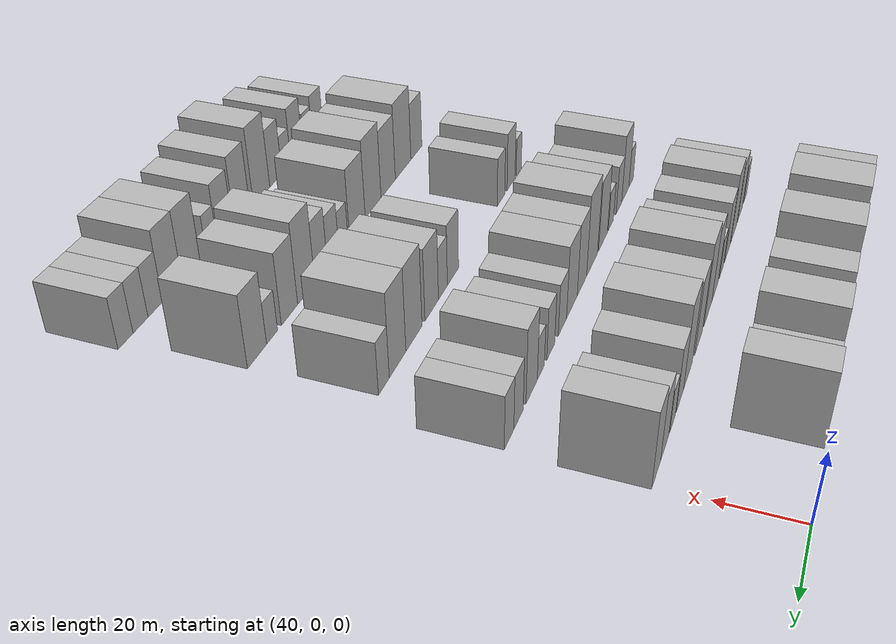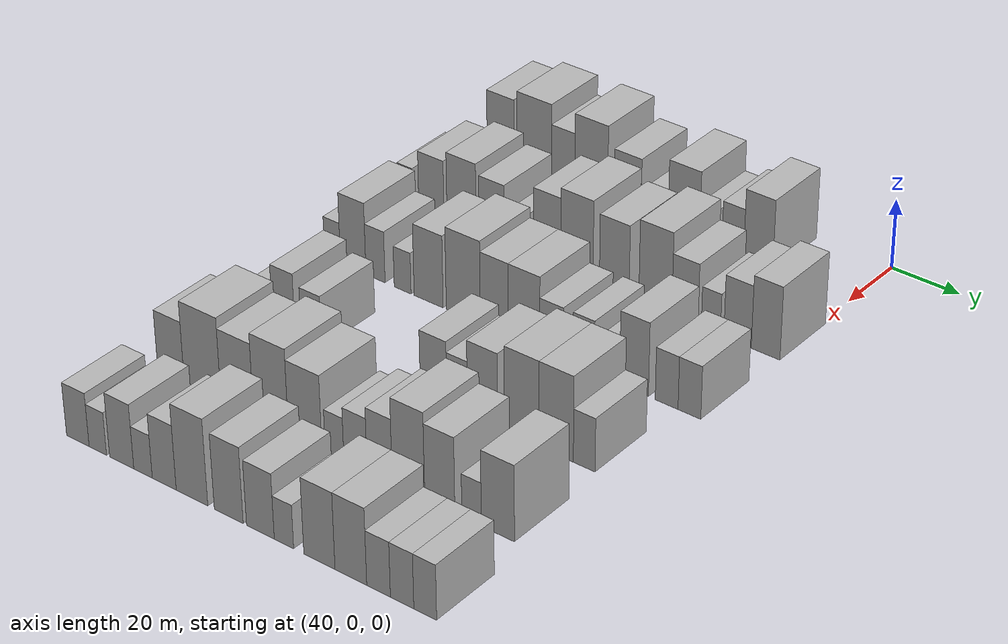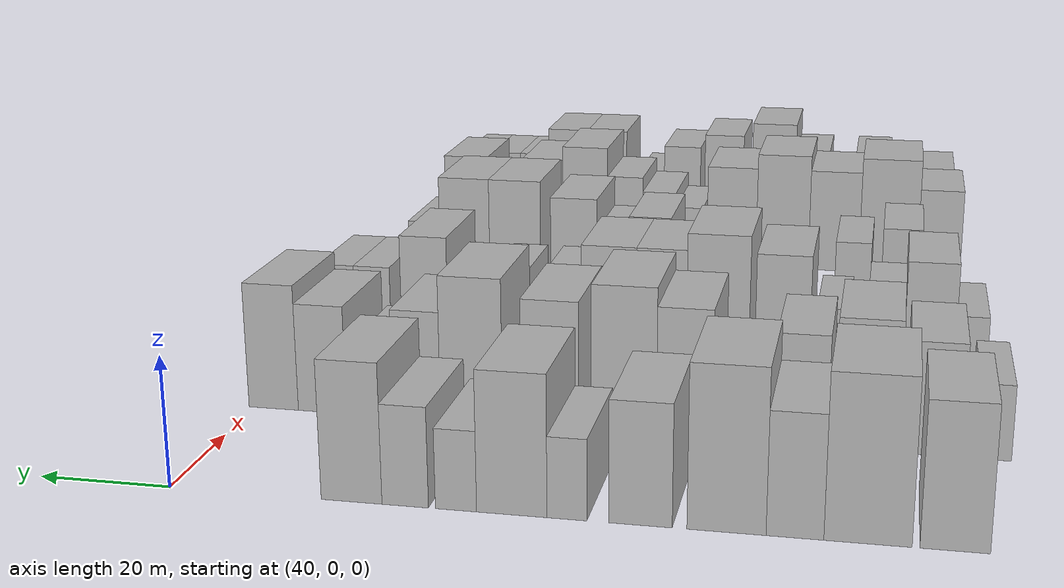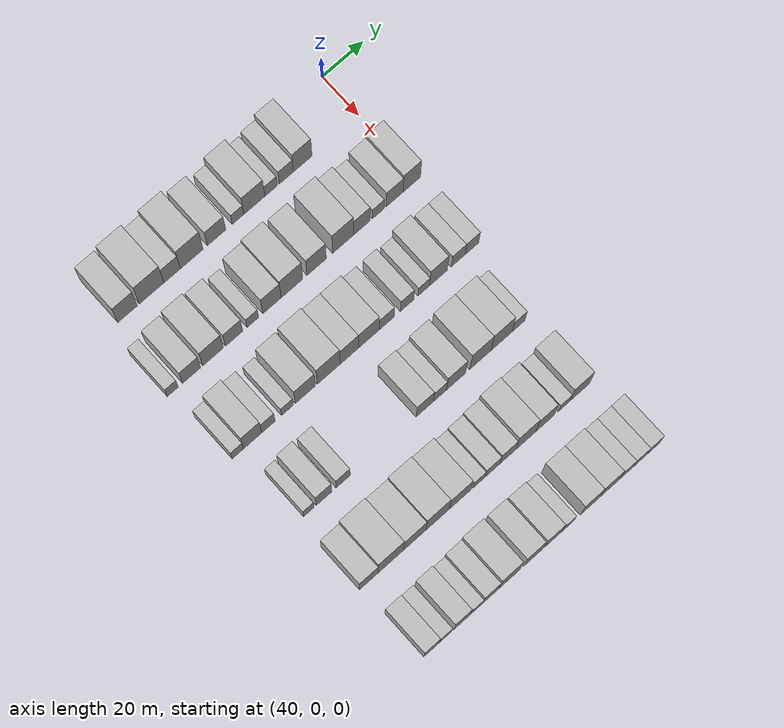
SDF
<sdf version="1.6">
 <world name="default">
  <model name="building_48">
   <static>1</static>
   <pose>50.0000 -110.4091 0 0.000000 0.000000 0.000000</pose>
   <link name="link">
    <pose>0 0 10.50 0 0 0</pose>
    <collision name="collision"><geometry><box><size>20.0000 9.1228 21.0000</size></box></geometry></collision>
    <visual name="visual">
     <cast_shadows>0</cast_shadows>
     <geometry><box><size>20.0000 9.1228 21.0000</size></box></geometry>
     <material>
      <script>
       <uri>model://HANNAS_wall/materials/scripts</uri>
       <uri>model://HANNAS_wall/materials/textures</uri>
       <name>vrc/HANNAS_wall</name>
      </script>
     </material>
    </visual>
   </link>
  </model>
  <model name="building_49">
   <static>1</static>
   <pose>50.0000 -99.0470 0 0.000000 0.000000 0.000000</pose>
   <link name="link">
    <pose>0 0 12.00 0 0 0</pose>
    <collision name="collision"><geometry><box><size>20.0000 11.6015 24.0000</size></box></geometry></collision>
    <visual name="visual">
     <cast_shadows>0</cast_shadows>
     <geometry><box><size>20.0000 11.6015 24.0000</size></box></geometry>
     <material>
      <script>
       <uri>model://HANNAS_wall/materials/scripts</uri>
       <uri>model://HANNAS_wall/materials/textures</uri>
       <name>vrc/HANNAS_wall</name>
      </script>
     </material>
    </visual>
   </link>
  </model>
  <model name="building_50">
   <static>1</static>
   <pose>50.0000 -89.3929 0 0.000000 0.000000 0.000000</pose>
   <link name="link">
    <pose>0 0 9.00 0 0 0</pose>
    <collision name="collision"><geometry><box><size>20.0000 7.7065 18.0000</size></box></geometry></collision>
    <visual name="visual">
     <cast_shadows>0</cast_shadows>
     <geometry><box><size>20.0000 7.7065 18.0000</size></box></geometry>
     <material>
      <script>
       <uri>model://HANNAS_wall/materials/scripts</uri>
       <uri>model://HANNAS_wall/materials/textures</uri>
       <name>vrc/HANNAS_wall</name>
      </script>
     </material>
    </visual>
   </link>
  </model>
  <model name="building_51">
   <static>1</static>
   <pose>50.0000 -80.1784 0 0.000000 0.000000 0.000000</pose>
   <link name="link">
    <pose>0 0 12.00 0 0 0</pose>
    <collision name="collision"><geometry><box><size>20.0000 10.7226 24.0000</size></box></geometry></collision>
    <visual name="visual">
     <cast_shadows>0</cast_shadows>
     <geometry><box><size>20.0000 10.7226 24.0000</size></box></geometry>
     <material>
      <script>
       <uri>model://HANNAS_wall/materials/scripts</uri>
       <uri>model://HANNAS_wall/materials/textures</uri>
       <name>vrc/HANNAS_wall</name>
      </script>
     </material>
    </visual>
   </link>
  </model>
  <model name="building_52">
   <static>1</static>
   <pose>50.0000 -68.4201 0 0.000000 0.000000 0.000000</pose>
   <link name="link">
    <pose>0 0 9.00 0 0 0</pose>
    <collision name="collision"><geometry><box><size>20.0000 8.7939 18.0000</size></box></geometry></collision>
    <visual name="visual">
     <cast_shadows>0</cast_shadows>
     <geometry><box><size>20.0000 8.7939 18.0000</size></box></geometry>
     <material>
      <script>
       <uri>model://HANNAS_wall/materials/scripts</uri>
       <uri>model://HANNAS_wall/materials/textures</uri>
       <name>vrc/HANNAS_wall</name>
      </script>
     </material>
    </visual>
   </link>
  </model>
  <model name="building_53">
   <static>1</static>
   <pose>50.0000 -58.2242 0 0.000000 0.000000 0.000000</pose>
   <link name="link">
    <pose>0 0 6.00 0 0 0</pose>
    <collision name="collision"><geometry><box><size>20.0000 5.5979 12.0000</size></box></geometry></collision>
    <visual name="visual">
     <cast_shadows>0</cast_shadows>
     <geometry><box><size>20.0000 5.5979 12.0000</size></box></geometry>
     <material>
      <script>
       <uri>model://HANNAS_wall/materials/scripts</uri>
       <uri>model://HANNAS_wall/materials/textures</uri>
       <name>vrc/HANNAS_wall</name>
      </script>
     </material>
    </visual>
   </link>
  </model>
  <model name="building_54">
   <static>1</static>
   <pose>50.0000 -50.4247 0 0.000000 0.000000 0.000000</pose>
   <link name="link">
    <pose>0 0 10.50 0 0 0</pose>
    <collision name="collision"><geometry><box><size>20.0000 10.0012 21.0000</size></box></geometry></collision>
    <visual name="visual">
     <cast_shadows>0</cast_shadows>
     <geometry><box><size>20.0000 10.0012 21.0000</size></box></geometry>
     <material>
      <script>
       <uri>model://HANNAS_wall/materials/scripts</uri>
       <uri>model://HANNAS_wall/materials/textures</uri>
       <name>vrc/HANNAS_wall</name>
      </script>
     </material>
    </visual>
   </link>
  </model>
  <model name="building_55">
   <static>1</static>
   <pose>50.0000 -42.4636 0 0.000000 0.000000 0.000000</pose>
   <link name="link">
    <pose>0 0 6.00 0 0 0</pose>
    <collision name="collision"><geometry><box><size>20.0000 5.9210 12.0000</size></box></geometry></collision>
    <visual name="visual">
     <cast_shadows>0</cast_shadows>
     <geometry><box><size>20.0000 5.9210 12.0000</size></box></geometry>
     <material>
      <script>
       <uri>model://HANNAS_wall/materials/scripts</uri>
       <uri>model://HANNAS_wall/materials/textures</uri>
       <name>vrc/HANNAS_wall</name>
      </script>
     </material>
    </visual>
   </link>
  </model>
  <model name="building_56">
   <static>1</static>
   <pose>50.0000 -35.1242 0 0.000000 0.000000 0.000000</pose>
   <link name="link">
    <pose>0 0 7.50 0 0 0</pose>
    <collision name="collision"><geometry><box><size>20.0000 6.7579 15.0000</size></box></geometry></collision>
    <visual name="visual">
     <cast_shadows>0</cast_shadows>
     <geometry><box><size>20.0000 6.7579 15.0000</size></box></geometry>
     <material>
      <script>
       <uri>model://HANNAS_wall/materials/scripts</uri>
       <uri>model://HANNAS_wall/materials/textures</uri>
       <name>vrc/HANNAS_wall</name>
      </script>
     </material>
    </visual>
   </link>
  </model>
  <model name="building_57">
   <static>1</static>
   <pose>50.0000 -27.2709 0 0.000000 0.000000 0.000000</pose>
   <link name="link">
    <pose>0 0 10.50 0 0 0</pose>
    <collision name="collision"><geometry><box><size>20.0000 8.9488 21.0000</size></box></geometry></collision>
    <visual name="visual">
     <cast_shadows>0</cast_shadows>
     <geometry><box><size>20.0000 8.9488 21.0000</size></box></geometry>
     <material>
      <script>
       <uri>model://HANNAS_wall/materials/scripts</uri>
       <uri>model://HANNAS_wall/materials/textures</uri>
       <name>vrc/HANNAS_wall</name>
      </script>
     </material>
    </visual>
   </link>
  </model>
  <model name="building_166">
   <static>1</static>
   <pose>82.0000 -116.8575 0 0.000000 0.000000 0.000000</pose>
   <link name="link">
    <pose>0 0 6.00 0 0 0</pose>
    <collision name="collision"><geometry><box><size>20.0000 5.1155 12.0000</size></box></geometry></collision>
    <visual name="visual">
     <cast_shadows>0</cast_shadows>
     <geometry><box><size>20.0000 5.1155 12.0000</size></box></geometry>
     <material>
      <script>
       <uri>model://HANNAS_wall/materials/scripts</uri>
       <uri>model://HANNAS_wall/materials/textures</uri>
       <name>vrc/HANNAS_wall</name>
      </script>
     </material>
    </visual>
   </link>
  </model>
  <model name="building_167">
   <static>1</static>
   <pose>82.0000 -108.0690 0 0.000000 0.000000 0.000000</pose>
   <link name="link">
    <pose>0 0 9.00 0 0 0</pose>
    <collision name="collision"><geometry><box><size>20.0000 8.4614 18.0000</size></box></geometry></collision>
    <visual name="visual">
     <cast_shadows>0</cast_shadows>
     <geometry><box><size>20.0000 8.4614 18.0000</size></box></geometry>
     <material>
      <script>
       <uri>model://HANNAS_wall/materials/scripts</uri>
       <uri>model://HANNAS_wall/materials/textures</uri>
       <name>vrc/HANNAS_wall</name>
      </script>
     </material>
    </visual>
   </link>
  </model>
  <model name="building_168">
   <static>1</static>
   <pose>82.0000 -98.0015 0 0.000000 0.000000 0.000000</pose>
   <link name="link">
    <pose>0 0 10.50 0 0 0</pose>
    <collision name="collision"><geometry><box><size>20.0000 9.6736 21.0000</size></box></geometry></collision>
    <visual name="visual">
     <cast_shadows>0</cast_shadows>
     <geometry><box><size>20.0000 9.6736 21.0000</size></box></geometry>
     <material>
      <script>
       <uri>model://HANNAS_wall/materials/scripts</uri>
       <uri>model://HANNAS_wall/materials/textures</uri>
       <name>vrc/HANNAS_wall</name>
      </script>
     </material>
    </visual>
   </link>
  </model>
  <model name="building_169">
   <static>1</static>
   <pose>82.0000 -88.0853 0 0.000000 0.000000 0.000000</pose>
   <link name="link">
    <pose>0 0 9.00 0 0 0</pose>
    <collision name="collision"><geometry><box><size>20.0000 8.1589 18.0000</size></box></geometry></collision>
    <visual name="visual">
     <cast_shadows>0</cast_shadows>
     <geometry><box><size>20.0000 8.1589 18.0000</size></box></geometry>
     <material>
      <script>
       <uri>model://HANNAS_wall/materials/scripts</uri>
       <uri>model://HANNAS_wall/materials/textures</uri>
       <name>vrc/HANNAS_wall</name>
      </script>
     </material>
    </visual>
   </link>
  </model>
  <model name="building_170">
   <static>1</static>
   <pose>82.0000 -79.2702 0 0.000000 0.000000 0.000000</pose>
   <link name="link">
    <pose>0 0 6.00 0 0 0</pose>
    <collision name="collision"><geometry><box><size>20.0000 5.4712 12.0000</size></box></geometry></collision>
    <visual name="visual">
     <cast_shadows>0</cast_shadows>
     <geometry><box><size>20.0000 5.4712 12.0000</size></box></geometry>
     <material>
      <script>
       <uri>model://HANNAS_wall/materials/scripts</uri>
       <uri>model://HANNAS_wall/materials/textures</uri>
       <name>vrc/HANNAS_wall</name>
      </script>
     </material>
    </visual>
   </link>
  </model>
  <model name="building_171">
   <static>1</static>
   <pose>82.0000 -70.1874 0 0.000000 0.000000 0.000000</pose>
   <link name="link">
    <pose>0 0 10.50 0 0 0</pose>
    <collision name="collision"><geometry><box><size>20.0000 8.6943 21.0000</size></box></geometry></collision>
    <visual name="visual">
     <cast_shadows>0</cast_shadows>
     <geometry><box><size>20.0000 8.6943 21.0000</size></box></geometry>
     <material>
      <script>
       <uri>model://HANNAS_wall/materials/scripts</uri>
       <uri>model://HANNAS_wall/materials/textures</uri>
       <name>vrc/HANNAS_wall</name>
      </script>
     </material>
    </visual>
   </link>
  </model>
  <model name="building_172">
   <static>1</static>
   <pose>82.0000 -60.7130 0 0.000000 0.000000 0.000000</pose>
   <link name="link">
    <pose>0 0 12.00 0 0 0</pose>
    <collision name="collision"><geometry><box><size>20.0000 10.2545 24.0000</size></box></geometry></collision>
    <visual name="visual">
     <cast_shadows>0</cast_shadows>
     <geometry><box><size>20.0000 10.2545 24.0000</size></box></geometry>
     <material>
      <script>
       <uri>model://HANNAS_wall/materials/scripts</uri>
       <uri>model://HANNAS_wall/materials/textures</uri>
       <name>vrc/HANNAS_wall</name>
      </script>
     </material>
    </visual>
   </link>
  </model>
  <model name="building_173">
   <static>1</static>
   <pose>82.0000 -48.9706 0 0.000000 0.000000 0.000000</pose>
   <link name="link">
    <pose>0 0 10.50 0 0 0</pose>
    <collision name="collision"><geometry><box><size>20.0000 9.2304 21.0000</size></box></geometry></collision>
    <visual name="visual">
     <cast_shadows>0</cast_shadows>
     <geometry><box><size>20.0000 9.2304 21.0000</size></box></geometry>
     <material>
      <script>
       <uri>model://HANNAS_wall/materials/scripts</uri>
       <uri>model://HANNAS_wall/materials/textures</uri>
       <name>vrc/HANNAS_wall</name>
      </script>
     </material>
    </visual>
   </link>
  </model>
  <model name="building_174">
   <static>1</static>
   <pose>82.0000 -36.3029 0 0.000000 0.000000 0.000000</pose>
   <link name="link">
    <pose>0 0 12.00 0 0 0</pose>
    <collision name="collision"><geometry><box><size>20.0000 10.1050 24.0000</size></box></geometry></collision>
    <visual name="visual">
     <cast_shadows>0</cast_shadows>
     <geometry><box><size>20.0000 10.1050 24.0000</size></box></geometry>
     <material>
      <script>
       <uri>model://HANNAS_wall/materials/scripts</uri>
       <uri>model://HANNAS_wall/materials/textures</uri>
       <name>vrc/HANNAS_wall</name>
      </script>
     </material>
    </visual>
   </link>
  </model>
  <model name="building_175">
   <static>1</static>
   <pose>82.0000 -27.2912 0 0.000000 0.000000 0.000000</pose>
   <link name="link">
    <pose>0 0 9.00 0 0 0</pose>
    <collision name="collision"><geometry><box><size>20.0000 7.9183 18.0000</size></box></geometry></collision>
    <visual name="visual">
     <cast_shadows>0</cast_shadows>
     <geometry><box><size>20.0000 7.9183 18.0000</size></box></geometry>
     <material>
      <script>
       <uri>model://HANNAS_wall/materials/scripts</uri>
       <uri>model://HANNAS_wall/materials/textures</uri>
       <name>vrc/HANNAS_wall</name>
      </script>
     </material>
    </visual>
   </link>
  </model>
  <model name="building_176">
   <static>1</static>
   <pose>82.0000 -19.4610 0 0.000000 0.000000 0.000000</pose>
   <link name="link">
    <pose>0 0 6.00 0 0 0</pose>
    <collision name="collision"><geometry><box><size>20.0000 5.7423 12.0000</size></box></geometry></collision>
    <visual name="visual">
     <cast_shadows>0</cast_shadows>
     <geometry><box><size>20.0000 5.7423 12.0000</size></box></geometry>
     <material>
      <script>
       <uri>model://HANNAS_wall/materials/scripts</uri>
       <uri>model://HANNAS_wall/materials/textures</uri>
       <name>vrc/HANNAS_wall</name>
      </script>
     </material>
    </visual>
   </link>
  </model>
  <model name="building_177">
   <static>1</static>
   <pose>82.0000 -11.5265 0 0.000000 0.000000 0.000000</pose>
   <link name="link">
    <pose>0 0 9.00 0 0 0</pose>
    <collision name="collision"><geometry><box><size>20.0000 8.1266 18.0000</size></box></geometry></collision>
    <visual name="visual">
     <cast_shadows>0</cast_shadows>
     <geometry><box><size>20.0000 8.1266 18.0000</size></box></geometry>
     <material>
      <script>
       <uri>model://HANNAS_wall/materials/scripts</uri>
       <uri>model://HANNAS_wall/materials/textures</uri>
       <name>vrc/HANNAS_wall</name>
      </script>
     </material>
    </visual>
   </link>
  </model>
  <model name="building_178">
   <static>1</static>
   <pose>82.0000 -3.2553 0 0.000000 0.000000 0.000000</pose>
   <link name="link">
    <pose>0 0 10.50 0 0 0</pose>
    <collision name="collision"><geometry><box><size>20.0000 8.4157 21.0000</size></box></geometry></collision>
    <visual name="visual">
     <cast_shadows>0</cast_shadows>
     <geometry><box><size>20.0000 8.4157 21.0000</size></box></geometry>
     <material>
      <script>
       <uri>model://HANNAS_wall/materials/scripts</uri>
       <uri>model://HANNAS_wall/materials/textures</uri>
       <name>vrc/HANNAS_wall</name>
      </script>
     </material>
    </visual>
   </link>
  </model>
  <model name="building_289">
   <static>1</static>
   <pose>114.0000 -114.3473 0 0.000000 0.000000 0.000000</pose>
   <link name="link">
    <pose>0 0 6.00 0 0 0</pose>
    <collision name="collision"><geometry><box><size>20.0000 5.3311 12.0000</size></box></geometry></collision>
    <visual name="visual">
     <cast_shadows>0</cast_shadows>
     <geometry><box><size>20.0000 5.3311 12.0000</size></box></geometry>
     <material>
      <script>
       <uri>model://HANNAS_wall/materials/scripts</uri>
       <uri>model://HANNAS_wall/materials/textures</uri>
       <name>vrc/HANNAS_wall</name>
      </script>
     </material>
    </visual>
   </link>
  </model>
  <model name="building_290">
   <static>1</static>
   <pose>114.0000 -107.4375 0 0.000000 0.000000 0.000000</pose>
   <link name="link">
    <pose>0 0 10.50 0 0 0</pose>
    <collision name="collision"><geometry><box><size>20.0000 8.4883 21.0000</size></box></geometry></collision>
    <visual name="visual">
     <cast_shadows>0</cast_shadows>
     <geometry><box><size>20.0000 8.4883 21.0000</size></box></geometry>
     <material>
      <script>
       <uri>model://HANNAS_wall/materials/scripts</uri>
       <uri>model://HANNAS_wall/materials/textures</uri>
       <name>vrc/HANNAS_wall</name>
      </script>
     </material>
    </visual>
   </link>
  </model>
  <model name="building_291">
   <static>1</static>
   <pose>114.0000 -100.0469 0 0.000000 0.000000 0.000000</pose>
   <link name="link">
    <pose>0 0 7.50 0 0 0</pose>
    <collision name="collision"><geometry><box><size>20.0000 6.2930 15.0000</size></box></geometry></collision>
    <visual name="visual">
     <cast_shadows>0</cast_shadows>
     <geometry><box><size>20.0000 6.2930 15.0000</size></box></geometry>
     <material>
      <script>
       <uri>model://HANNAS_wall/materials/scripts</uri>
       <uri>model://HANNAS_wall/materials/textures</uri>
       <name>vrc/HANNAS_wall</name>
      </script>
     </material>
    </visual>
   </link>
  </model>
  <model name="building_292">
   <static>1</static>
   <pose>114.0000 -91.1639 0 0.000000 0.000000 0.000000</pose>
   <link name="link">
    <pose>0 0 6.00 0 0 0</pose>
    <collision name="collision"><geometry><box><size>20.0000 5.4729 12.0000</size></box></geometry></collision>
    <visual name="visual">
     <cast_shadows>0</cast_shadows>
     <geometry><box><size>20.0000 5.4729 12.0000</size></box></geometry>
     <material>
      <script>
       <uri>model://HANNAS_wall/materials/scripts</uri>
       <uri>model://HANNAS_wall/materials/textures</uri>
       <name>vrc/HANNAS_wall</name>
      </script>
     </material>
    </visual>
   </link>
  </model>
  <model name="building_293">
   <static>1</static>
   <pose>114.0000 -82.7549 0 0.000000 0.000000 0.000000</pose>
   <link name="link">
    <pose>0 0 10.50 0 0 0</pose>
    <collision name="collision"><geometry><box><size>20.0000 9.3450 21.0000</size></box></geometry></collision>
    <visual name="visual">
     <cast_shadows>0</cast_shadows>
     <geometry><box><size>20.0000 9.3450 21.0000</size></box></geometry>
     <material>
      <script>
       <uri>model://HANNAS_wall/materials/scripts</uri>
       <uri>model://HANNAS_wall/materials/textures</uri>
       <name>vrc/HANNAS_wall</name>
      </script>
     </material>
    </visual>
   </link>
  </model>
  <model name="building_294">
   <static>1</static>
   <pose>114.0000 -71.6707 0 0.000000 0.000000 0.000000</pose>
   <link name="link">
    <pose>0 0 12.00 0 0 0</pose>
    <collision name="collision"><geometry><box><size>20.0000 10.8234 24.0000</size></box></geometry></collision>
    <visual name="visual">
     <cast_shadows>0</cast_shadows>
     <geometry><box><size>20.0000 10.8234 24.0000</size></box></geometry>
     <material>
      <script>
       <uri>model://HANNAS_wall/materials/scripts</uri>
       <uri>model://HANNAS_wall/materials/textures</uri>
       <name>vrc/HANNAS_wall</name>
      </script>
     </material>
    </visual>
   </link>
  </model>
  <model name="building_295">
   <static>1</static>
   <pose>114.0000 -61.8608 0 0.000000 0.000000 0.000000</pose>
   <link name="link">
    <pose>0 0 10.50 0 0 0</pose>
    <collision name="collision"><geometry><box><size>20.0000 8.7965 21.0000</size></box></geometry></collision>
    <visual name="visual">
     <cast_shadows>0</cast_shadows>
     <geometry><box><size>20.0000 8.7965 21.0000</size></box></geometry>
     <material>
      <script>
       <uri>model://HANNAS_wall/materials/scripts</uri>
       <uri>model://HANNAS_wall/materials/textures</uri>
       <name>vrc/HANNAS_wall</name>
      </script>
     </material>
    </visual>
   </link>
  </model>
  <model name="building_296">
   <static>1</static>
   <pose>114.0000 -52.6117 0 0.000000 0.000000 0.000000</pose>
   <link name="link">
    <pose>0 0 10.50 0 0 0</pose>
    <collision name="collision"><geometry><box><size>20.0000 9.7017 21.0000</size></box></geometry></collision>
    <visual name="visual">
     <cast_shadows>0</cast_shadows>
     <geometry><box><size>20.0000 9.7017 21.0000</size></box></geometry>
     <material>
      <script>
       <uri>model://HANNAS_wall/materials/scripts</uri>
       <uri>model://HANNAS_wall/materials/textures</uri>
       <name>vrc/HANNAS_wall</name>
      </script>
     </material>
    </visual>
   </link>
  </model>
  <model name="building_297">
   <static>1</static>
   <pose>114.0000 -44.1905 0 0.000000 0.000000 0.000000</pose>
   <link name="link">
    <pose>0 0 7.50 0 0 0</pose>
    <collision name="collision"><geometry><box><size>20.0000 7.1407 15.0000</size></box></geometry></collision>
    <visual name="visual">
     <cast_shadows>0</cast_shadows>
     <geometry><box><size>20.0000 7.1407 15.0000</size></box></geometry>
     <material>
      <script>
       <uri>model://HANNAS_wall/materials/scripts</uri>
       <uri>model://HANNAS_wall/materials/textures</uri>
       <name>vrc/HANNAS_wall</name>
      </script>
     </material>
    </visual>
   </link>
  </model>
  <model name="building_298">
   <static>1</static>
   <pose>114.0000 -34.4107 0 0.000000 0.000000 0.000000</pose>
   <link name="link">
    <pose>0 0 7.50 0 0 0</pose>
    <collision name="collision"><geometry><box><size>20.0000 6.4190 15.0000</size></box></geometry></collision>
    <visual name="visual">
     <cast_shadows>0</cast_shadows>
     <geometry><box><size>20.0000 6.4190 15.0000</size></box></geometry>
     <material>
      <script>
       <uri>model://HANNAS_wall/materials/scripts</uri>
       <uri>model://HANNAS_wall/materials/textures</uri>
       <name>vrc/HANNAS_wall</name>
      </script>
     </material>
    </visual>
   </link>
  </model>
  <model name="building_299">
   <static>1</static>
   <pose>114.0000 -26.4328 0 0.000000 0.000000 0.000000</pose>
   <link name="link">
    <pose>0 0 6.00 0 0 0</pose>
    <collision name="collision"><geometry><box><size>20.0000 5.5368 12.0000</size></box></geometry></collision>
    <visual name="visual">
     <cast_shadows>0</cast_shadows>
     <geometry><box><size>20.0000 5.5368 12.0000</size></box></geometry>
     <material>
      <script>
       <uri>model://HANNAS_wall/materials/scripts</uri>
       <uri>model://HANNAS_wall/materials/textures</uri>
       <name>vrc/HANNAS_wall</name>
      </script>
     </material>
    </visual>
   </link>
  </model>
  <model name="building_300">
   <static>1</static>
   <pose>114.0000 -19.4034 0 0.000000 0.000000 0.000000</pose>
   <link name="link">
    <pose>0 0 10.50 0 0 0</pose>
    <collision name="collision"><geometry><box><size>20.0000 8.5221 21.0000</size></box></geometry></collision>
    <visual name="visual">
     <cast_shadows>0</cast_shadows>
     <geometry><box><size>20.0000 8.5221 21.0000</size></box></geometry>
     <material>
      <script>
       <uri>model://HANNAS_wall/materials/scripts</uri>
       <uri>model://HANNAS_wall/materials/textures</uri>
       <name>vrc/HANNAS_wall</name>
      </script>
     </material>
    </visual>
   </link>
  </model>
  <model name="building_301">
   <static>1</static>
   <pose>114.0000 -9.8149 0 0.000000 0.000000 0.000000</pose>
   <link name="link">
    <pose>0 0 7.50 0 0 0</pose>
    <collision name="collision"><geometry><box><size>20.0000 6.6549 15.0000</size></box></geometry></collision>
    <visual name="visual">
     <cast_shadows>0</cast_shadows>
     <geometry><box><size>20.0000 6.6549 15.0000</size></box></geometry>
     <material>
      <script>
       <uri>model://HANNAS_wall/materials/scripts</uri>
       <uri>model://HANNAS_wall/materials/textures</uri>
       <name>vrc/HANNAS_wall</name>
      </script>
     </material>
    </visual>
   </link>
  </model>
  <model name="building_302">
   <static>1</static>
   <pose>114.0000 -3.1990 0 0.000000 0.000000 0.000000</pose>
   <link name="link">
    <pose>0 0 7.50 0 0 0</pose>
    <collision name="collision"><geometry><box><size>20.0000 6.5769 15.0000</size></box></geometry></collision>
    <visual name="visual">
     <cast_shadows>0</cast_shadows>
     <geometry><box><size>20.0000 6.5769 15.0000</size></box></geometry>
     <material>
      <script>
       <uri>model://HANNAS_wall/materials/scripts</uri>
       <uri>model://HANNAS_wall/materials/textures</uri>
       <name>vrc/HANNAS_wall</name>
      </script>
     </material>
    </visual>
   </link>
  </model>
  <model name="building_414">
   <static>1</static>
   <pose>146.0000 -109.4839 0 0.000000 0.000000 0.000000</pose>
   <link name="link">
    <pose>0 0 6.00 0 0 0</pose>
    <collision name="collision"><geometry><box><size>20.0000 4.8626 12.0000</size></box></geometry></collision>
    <visual name="visual">
     <cast_shadows>0</cast_shadows>
     <geometry><box><size>20.0000 4.8626 12.0000</size></box></geometry>
     <material>
      <script>
       <uri>model://HANNAS_wall/materials/scripts</uri>
       <uri>model://HANNAS_wall/materials/textures</uri>
       <name>vrc/HANNAS_wall</name>
      </script>
     </material>
    </visual>
   </link>
  </model>
  <model name="building_415">
   <static>1</static>
   <pose>146.0000 -102.4046 0 0.000000 0.000000 0.000000</pose>
   <link name="link">
    <pose>0 0 9.00 0 0 0</pose>
    <collision name="collision"><geometry><box><size>20.0000 7.2959 18.0000</size></box></geometry></collision>
    <visual name="visual">
     <cast_shadows>0</cast_shadows>
     <geometry><box><size>20.0000 7.2959 18.0000</size></box></geometry>
     <material>
      <script>
       <uri>model://HANNAS_wall/materials/scripts</uri>
       <uri>model://HANNAS_wall/materials/textures</uri>
       <name>vrc/HANNAS_wall</name>
      </script>
     </material>
    </visual>
   </link>
  </model>
  <model name="building_416">
   <static>1</static>
   <pose>146.0000 -93.4494 0 0.000000 0.000000 0.000000</pose>
   <link name="link">
    <pose>0 0 7.50 0 0 0</pose>
    <collision name="collision"><geometry><box><size>20.0000 6.6145 15.0000</size></box></geometry></collision>
    <visual name="visual">
     <cast_shadows>0</cast_shadows>
     <geometry><box><size>20.0000 6.6145 15.0000</size></box></geometry>
     <material>
      <script>
       <uri>model://HANNAS_wall/materials/scripts</uri>
       <uri>model://HANNAS_wall/materials/textures</uri>
       <name>vrc/HANNAS_wall</name>
      </script>
     </material>
    </visual>
   </link>
  </model>
  <model name="building_417">
   <static>1</static>
   <pose>146.0000 -54.9550 0 0.000000 0.000000 0.000000</pose>
   <link name="link">
    <pose>0 0 9.00 0 0 0</pose>
    <collision name="collision"><geometry><box><size>20.0000 8.1248 18.0000</size></box></geometry></collision>
    <visual name="visual">
     <cast_shadows>0</cast_shadows>
     <geometry><box><size>20.0000 8.1248 18.0000</size></box></geometry>
     <material>
      <script>
       <uri>model://HANNAS_wall/materials/scripts</uri>
       <uri>model://HANNAS_wall/materials/textures</uri>
       <name>vrc/HANNAS_wall</name>
      </script>
     </material>
    </visual>
   </link>
  </model>
  <model name="building_418">
   <static>1</static>
   <pose>146.0000 -47.7567 0 0.000000 0.000000 0.000000</pose>
   <link name="link">
    <pose>0 0 7.50 0 0 0</pose>
    <collision name="collision"><geometry><box><size>20.0000 6.2717 15.0000</size></box></geometry></collision>
    <visual name="visual">
     <cast_shadows>0</cast_shadows>
     <geometry><box><size>20.0000 6.2717 15.0000</size></box></geometry>
     <material>
      <script>
       <uri>model://HANNAS_wall/materials/scripts</uri>
       <uri>model://HANNAS_wall/materials/textures</uri>
       <name>vrc/HANNAS_wall</name>
      </script>
     </material>
    </visual>
   </link>
  </model>
  <model name="building_419">
   <static>1</static>
   <pose>146.0000 -40.0603 0 0.000000 0.000000 0.000000</pose>
   <link name="link">
    <pose>0 0 10.50 0 0 0</pose>
    <collision name="collision"><geometry><box><size>20.0000 9.1210 21.0000</size></box></geometry></collision>
    <visual name="visual">
     <cast_shadows>0</cast_shadows>
     <geometry><box><size>20.0000 9.1210 21.0000</size></box></geometry>
     <material>
      <script>
       <uri>model://HANNAS_wall/materials/scripts</uri>
       <uri>model://HANNAS_wall/materials/textures</uri>
       <name>vrc/HANNAS_wall</name>
      </script>
     </material>
    </visual>
   </link>
  </model>
  <model name="building_420">
   <static>1</static>
   <pose>146.0000 -28.3979 0 0.000000 0.000000 0.000000</pose>
   <link name="link">
    <pose>0 0 12.00 0 0 0</pose>
    <collision name="collision"><geometry><box><size>20.0000 10.2038 24.0000</size></box></geometry></collision>
    <visual name="visual">
     <cast_shadows>0</cast_shadows>
     <geometry><box><size>20.0000 10.2038 24.0000</size></box></geometry>
     <material>
      <script>
       <uri>model://HANNAS_wall/materials/scripts</uri>
       <uri>model://HANNAS_wall/materials/textures</uri>
       <name>vrc/HANNAS_wall</name>
      </script>
     </material>
    </visual>
   </link>
  </model>
  <model name="building_421">
   <static>1</static>
   <pose>146.0000 -18.2973 0 0.000000 0.000000 0.000000</pose>
   <link name="link">
    <pose>0 0 12.00 0 0 0</pose>
    <collision name="collision"><geometry><box><size>20.0000 9.9975 24.0000</size></box></geometry></collision>
    <visual name="visual">
     <cast_shadows>0</cast_shadows>
     <geometry><box><size>20.0000 9.9975 24.0000</size></box></geometry>
     <material>
      <script>
       <uri>model://HANNAS_wall/materials/scripts</uri>
       <uri>model://HANNAS_wall/materials/textures</uri>
       <name>vrc/HANNAS_wall</name>
      </script>
     </material>
    </visual>
   </link>
  </model>
  <model name="building_422">
   <static>1</static>
   <pose>146.0000 -10.1630 0 0.000000 0.000000 0.000000</pose>
   <link name="link">
    <pose>0 0 7.50 0 0 0</pose>
    <collision name="collision"><geometry><box><size>20.0000 6.2711 15.0000</size></box></geometry></collision>
    <visual name="visual">
     <cast_shadows>0</cast_shadows>
     <geometry><box><size>20.0000 6.2711 15.0000</size></box></geometry>
     <material>
      <script>
       <uri>model://HANNAS_wall/materials/scripts</uri>
       <uri>model://HANNAS_wall/materials/textures</uri>
       <name>vrc/HANNAS_wall</name>
      </script>
     </material>
    </visual>
   </link>
  </model>
  <model name="building_532">
   <static>1</static>
   <pose>178.0000 -110.0928 0 0.000000 0.000000 0.000000</pose>
   <link name="link">
    <pose>0 0 9.00 0 0 0</pose>
    <collision name="collision"><geometry><box><size>20.0000 8.6662 18.0000</size></box></geometry></collision>
    <visual name="visual">
     <cast_shadows>0</cast_shadows>
     <geometry><box><size>20.0000 8.6662 18.0000</size></box></geometry>
     <material>
      <script>
       <uri>model://HANNAS_wall/materials/scripts</uri>
       <uri>model://HANNAS_wall/materials/textures</uri>
       <name>vrc/HANNAS_wall</name>
      </script>
     </material>
    </visual>
   </link>
  </model>
  <model name="building_533">
   <static>1</static>
   <pose>178.0000 -99.8149 0 0.000000 0.000000 0.000000</pose>
   <link name="link">
    <pose>0 0 12.00 0 0 0</pose>
    <collision name="collision"><geometry><box><size>20.0000 11.8897 24.0000</size></box></geometry></collision>
    <visual name="visual">
     <cast_shadows>0</cast_shadows>
     <geometry><box><size>20.0000 11.8897 24.0000</size></box></geometry>
     <material>
      <script>
       <uri>model://HANNAS_wall/materials/scripts</uri>
       <uri>model://HANNAS_wall/materials/textures</uri>
       <name>vrc/HANNAS_wall</name>
      </script>
     </material>
    </visual>
   </link>
  </model>
  <model name="building_534">
   <static>1</static>
   <pose>178.0000 -88.6684 0 0.000000 0.000000 0.000000</pose>
   <link name="link">
    <pose>0 0 10.50 0 0 0</pose>
    <collision name="collision"><geometry><box><size>20.0000 10.4032 21.0000</size></box></geometry></collision>
    <visual name="visual">
     <cast_shadows>0</cast_shadows>
     <geometry><box><size>20.0000 10.4032 21.0000</size></box></geometry>
     <material>
      <script>
       <uri>model://HANNAS_wall/materials/scripts</uri>
       <uri>model://HANNAS_wall/materials/textures</uri>
       <name>vrc/HANNAS_wall</name>
      </script>
     </material>
    </visual>
   </link>
  </model>
  <model name="building_535">
   <static>1</static>
   <pose>178.0000 -78.0075 0 0.000000 0.000000 0.000000</pose>
   <link name="link">
    <pose>0 0 12.00 0 0 0</pose>
    <collision name="collision"><geometry><box><size>20.0000 10.9186 24.0000</size></box></geometry></collision>
    <visual name="visual">
     <cast_shadows>0</cast_shadows>
     <geometry><box><size>20.0000 10.9186 24.0000</size></box></geometry>
     <material>
      <script>
       <uri>model://HANNAS_wall/materials/scripts</uri>
       <uri>model://HANNAS_wall/materials/textures</uri>
       <name>vrc/HANNAS_wall</name>
      </script>
     </material>
    </visual>
   </link>
  </model>
  <model name="building_536">
   <static>1</static>
   <pose>178.0000 -67.3786 0 0.000000 0.000000 0.000000</pose>
   <link name="link">
    <pose>0 0 10.50 0 0 0</pose>
    <collision name="collision"><geometry><box><size>20.0000 10.3391 21.0000</size></box></geometry></collision>
    <visual name="visual">
     <cast_shadows>0</cast_shadows>
     <geometry><box><size>20.0000 10.3391 21.0000</size></box></geometry>
     <material>
      <script>
       <uri>model://HANNAS_wall/materials/scripts</uri>
       <uri>model://HANNAS_wall/materials/textures</uri>
       <name>vrc/HANNAS_wall</name>
      </script>
     </material>
    </visual>
   </link>
  </model>
  <model name="building_537">
   <static>1</static>
   <pose>178.0000 -58.3624 0 0.000000 0.000000 0.000000</pose>
   <link name="link">
    <pose>0 0 6.00 0 0 0</pose>
    <collision name="collision"><geometry><box><size>20.0000 5.6932 12.0000</size></box></geometry></collision>
    <visual name="visual">
     <cast_shadows>0</cast_shadows>
     <geometry><box><size>20.0000 5.6932 12.0000</size></box></geometry>
     <material>
      <script>
       <uri>model://HANNAS_wall/materials/scripts</uri>
       <uri>model://HANNAS_wall/materials/textures</uri>
       <name>vrc/HANNAS_wall</name>
      </script>
     </material>
    </visual>
   </link>
  </model>
  <model name="building_538">
   <static>1</static>
   <pose>178.0000 -51.9931 0 0.000000 0.000000 0.000000</pose>
   <link name="link">
    <pose>0 0 7.50 0 0 0</pose>
    <collision name="collision"><geometry><box><size>20.0000 7.0454 15.0000</size></box></geometry></collision>
    <visual name="visual">
     <cast_shadows>0</cast_shadows>
     <geometry><box><size>20.0000 7.0454 15.0000</size></box></geometry>
     <material>
      <script>
       <uri>model://HANNAS_wall/materials/scripts</uri>
       <uri>model://HANNAS_wall/materials/textures</uri>
       <name>vrc/HANNAS_wall</name>
      </script>
     </material>
    </visual>
   </link>
  </model>
  <model name="building_539">
   <static>1</static>
   <pose>178.0000 -44.7167 0 0.000000 0.000000 0.000000</pose>
   <link name="link">
    <pose>0 0 9.00 0 0 0</pose>
    <collision name="collision"><geometry><box><size>20.0000 7.5075 18.0000</size></box></geometry></collision>
    <visual name="visual">
     <cast_shadows>0</cast_shadows>
     <geometry><box><size>20.0000 7.5075 18.0000</size></box></geometry>
     <material>
      <script>
       <uri>model://HANNAS_wall/materials/scripts</uri>
       <uri>model://HANNAS_wall/materials/textures</uri>
       <name>vrc/HANNAS_wall</name>
      </script>
     </material>
    </visual>
   </link>
  </model>
  <model name="building_540">
   <static>1</static>
   <pose>178.0000 -36.1557 0 0.000000 0.000000 0.000000</pose>
   <link name="link">
    <pose>0 0 12.00 0 0 0</pose>
    <collision name="collision"><geometry><box><size>20.0000 9.6145 24.0000</size></box></geometry></collision>
    <visual name="visual">
     <cast_shadows>0</cast_shadows>
     <geometry><box><size>20.0000 9.6145 24.0000</size></box></geometry>
     <material>
      <script>
       <uri>model://HANNAS_wall/materials/scripts</uri>
       <uri>model://HANNAS_wall/materials/textures</uri>
       <name>vrc/HANNAS_wall</name>
      </script>
     </material>
    </visual>
   </link>
  </model>
  <model name="building_541">
   <static>1</static>
   <pose>178.0000 -26.9537 0 0.000000 0.000000 0.000000</pose>
   <link name="link">
    <pose>0 0 10.50 0 0 0</pose>
    <collision name="collision"><geometry><box><size>20.0000 8.7896 21.0000</size></box></geometry></collision>
    <visual name="visual">
     <cast_shadows>0</cast_shadows>
     <geometry><box><size>20.0000 8.7896 21.0000</size></box></geometry>
     <material>
      <script>
       <uri>model://HANNAS_wall/materials/scripts</uri>
       <uri>model://HANNAS_wall/materials/textures</uri>
       <name>vrc/HANNAS_wall</name>
      </script>
     </material>
    </visual>
   </link>
  </model>
  <model name="building_542">
   <static>1</static>
   <pose>178.0000 -17.7513 0 0.000000 0.000000 0.000000</pose>
   <link name="link">
    <pose>0 0 6.00 0 0 0</pose>
    <collision name="collision"><geometry><box><size>20.0000 5.6151 12.0000</size></box></geometry></collision>
    <visual name="visual">
     <cast_shadows>0</cast_shadows>
     <geometry><box><size>20.0000 5.6151 12.0000</size></box></geometry>
     <material>
      <script>
       <uri>model://HANNAS_wall/materials/scripts</uri>
       <uri>model://HANNAS_wall/materials/textures</uri>
       <name>vrc/HANNAS_wall</name>
      </script>
     </material>
    </visual>
   </link>
  </model>
  <model name="building_543">
   <static>1</static>
   <pose>178.0000 -10.2183 0 0.000000 0.000000 0.000000</pose>
   <link name="link">
    <pose>0 0 10.50 0 0 0</pose>
    <collision name="collision"><geometry><box><size>20.0000 9.4508 21.0000</size></box></geometry></collision>
    <visual name="visual">
     <cast_shadows>0</cast_shadows>
     <geometry><box><size>20.0000 9.4508 21.0000</size></box></geometry>
     <material>
      <script>
       <uri>model://HANNAS_wall/materials/scripts</uri>
       <uri>model://HANNAS_wall/materials/textures</uri>
       <name>vrc/HANNAS_wall</name>
      </script>
     </material>
    </visual>
   </link>
  </model>
  <model name="building_649">
   <static>1</static>
   <pose>210.0000 -109.6645 0 0.000000 0.000000 0.000000</pose>
   <link name="link">
    <pose>0 0 7.50 0 0 0</pose>
    <collision name="collision"><geometry><box><size>20.0000 7.3225 15.0000</size></box></geometry></collision>
    <visual name="visual">
     <cast_shadows>0</cast_shadows>
     <geometry><box><size>20.0000 7.3225 15.0000</size></box></geometry>
     <material>
      <script>
       <uri>model://HANNAS_wall/materials/scripts</uri>
       <uri>model://HANNAS_wall/materials/textures</uri>
       <name>vrc/HANNAS_wall</name>
      </script>
     </material>
    </visual>
   </link>
  </model>
  <model name="building_650">
   <static>1</static>
   <pose>210.0000 -103.1952 0 0.000000 0.000000 0.000000</pose>
   <link name="link">
    <pose>0 0 6.00 0 0 0</pose>
    <collision name="collision"><geometry><box><size>20.0000 5.6162 12.0000</size></box></geometry></collision>
    <visual name="visual">
     <cast_shadows>0</cast_shadows>
     <geometry><box><size>20.0000 5.6162 12.0000</size></box></geometry>
     <material>
      <script>
       <uri>model://HANNAS_wall/materials/scripts</uri>
       <uri>model://HANNAS_wall/materials/textures</uri>
       <name>vrc/HANNAS_wall</name>
      </script>
     </material>
    </visual>
   </link>
  </model>
  <model name="building_651">
   <static>1</static>
   <pose>210.0000 -95.5321 0 0.000000 0.000000 0.000000</pose>
   <link name="link">
    <pose>0 0 9.00 0 0 0</pose>
    <collision name="collision"><geometry><box><size>20.0000 7.7100 18.0000</size></box></geometry></collision>
    <visual name="visual">
     <cast_shadows>0</cast_shadows>
     <geometry><box><size>20.0000 7.7100 18.0000</size></box></geometry>
     <material>
      <script>
       <uri>model://HANNAS_wall/materials/scripts</uri>
       <uri>model://HANNAS_wall/materials/textures</uri>
       <name>vrc/HANNAS_wall</name>
      </script>
     </material>
    </visual>
   </link>
  </model>
  <model name="building_652">
   <static>1</static>
   <pose>210.0000 -88.7548 0 0.000000 0.000000 0.000000</pose>
   <link name="link">
    <pose>0 0 6.00 0 0 0</pose>
    <collision name="collision"><geometry><box><size>20.0000 5.8446 12.0000</size></box></geometry></collision>
    <visual name="visual">
     <cast_shadows>0</cast_shadows>
     <geometry><box><size>20.0000 5.8446 12.0000</size></box></geometry>
     <material>
      <script>
       <uri>model://HANNAS_wall/materials/scripts</uri>
       <uri>model://HANNAS_wall/materials/textures</uri>
       <name>vrc/HANNAS_wall</name>
      </script>
     </material>
    </visual>
   </link>
  </model>
  <model name="building_653">
   <static>1</static>
   <pose>210.0000 -82.0818 0 0.000000 0.000000 0.000000</pose>
   <link name="link">
    <pose>0 0 9.00 0 0 0</pose>
    <collision name="collision"><geometry><box><size>20.0000 7.5014 18.0000</size></box></geometry></collision>
    <visual name="visual">
     <cast_shadows>0</cast_shadows>
     <geometry><box><size>20.0000 7.5014 18.0000</size></box></geometry>
     <material>
      <script>
       <uri>model://HANNAS_wall/materials/scripts</uri>
       <uri>model://HANNAS_wall/materials/textures</uri>
       <name>vrc/HANNAS_wall</name>
      </script>
     </material>
    </visual>
   </link>
  </model>
  <model name="building_654">
   <static>1</static>
   <pose>210.0000 -73.4503 0 0.000000 0.000000 0.000000</pose>
   <link name="link">
    <pose>0 0 12.00 0 0 0</pose>
    <collision name="collision"><geometry><box><size>20.0000 9.7616 24.0000</size></box></geometry></collision>
    <visual name="visual">
     <cast_shadows>0</cast_shadows>
     <geometry><box><size>20.0000 9.7616 24.0000</size></box></geometry>
     <material>
      <script>
       <uri>model://HANNAS_wall/materials/scripts</uri>
       <uri>model://HANNAS_wall/materials/textures</uri>
       <name>vrc/HANNAS_wall</name>
      </script>
     </material>
    </visual>
   </link>
  </model>
  <model name="building_655">
   <static>1</static>
   <pose>210.0000 -62.1775 0 0.000000 0.000000 0.000000</pose>
   <link name="link">
    <pose>0 0 10.50 0 0 0</pose>
    <collision name="collision"><geometry><box><size>20.0000 8.7841 21.0000</size></box></geometry></collision>
    <visual name="visual">
     <cast_shadows>0</cast_shadows>
     <geometry><box><size>20.0000 8.7841 21.0000</size></box></geometry>
     <material>
      <script>
       <uri>model://HANNAS_wall/materials/scripts</uri>
       <uri>model://HANNAS_wall/materials/textures</uri>
       <name>vrc/HANNAS_wall</name>
      </script>
     </material>
    </visual>
   </link>
  </model>
  <model name="building_656">
   <static>1</static>
   <pose>210.0000 -52.6208 0 0.000000 0.000000 0.000000</pose>
   <link name="link">
    <pose>0 0 9.00 0 0 0</pose>
    <collision name="collision"><geometry><box><size>20.0000 8.3293 18.0000</size></box></geometry></collision>
    <visual name="visual">
     <cast_shadows>0</cast_shadows>
     <geometry><box><size>20.0000 8.3293 18.0000</size></box></geometry>
     <material>
      <script>
       <uri>model://HANNAS_wall/materials/scripts</uri>
       <uri>model://HANNAS_wall/materials/textures</uri>
       <name>vrc/HANNAS_wall</name>
      </script>
     </material>
    </visual>
   </link>
  </model>
  <model name="building_657">
   <static>1</static>
   <pose>210.0000 -45.5815 0 0.000000 0.000000 0.000000</pose>
   <link name="link">
    <pose>0 0 6.00 0 0 0</pose>
    <collision name="collision"><geometry><box><size>20.0000 5.7494 12.0000</size></box></geometry></collision>
    <visual name="visual">
     <cast_shadows>0</cast_shadows>
     <geometry><box><size>20.0000 5.7494 12.0000</size></box></geometry>
     <material>
      <script>
       <uri>model://HANNAS_wall/materials/scripts</uri>
       <uri>model://HANNAS_wall/materials/textures</uri>
       <name>vrc/HANNAS_wall</name>
      </script>
     </material>
    </visual>
   </link>
  </model>
  <model name="building_658">
   <static>1</static>
   <pose>210.0000 -35.1512 0 0.000000 0.000000 0.000000</pose>
   <link name="link">
    <pose>0 0 10.50 0 0 0</pose>
    <collision name="collision"><geometry><box><size>20.0000 9.1111 21.0000</size></box></geometry></collision>
    <visual name="visual">
     <cast_shadows>0</cast_shadows>
     <geometry><box><size>20.0000 9.1111 21.0000</size></box></geometry>
     <material>
      <script>
       <uri>model://HANNAS_wall/materials/scripts</uri>
       <uri>model://HANNAS_wall/materials/textures</uri>
       <name>vrc/HANNAS_wall</name>
      </script>
     </material>
    </visual>
   </link>
  </model>
  <model name="building_659">
   <static>1</static>
   <pose>210.0000 -26.0176 0 0.000000 0.000000 0.000000</pose>
   <link name="link">
    <pose>0 0 10.50 0 0 0</pose>
    <collision name="collision"><geometry><box><size>20.0000 9.1562 21.0000</size></box></geometry></collision>
    <visual name="visual">
     <cast_shadows>0</cast_shadows>
     <geometry><box><size>20.0000 9.1562 21.0000</size></box></geometry>
     <material>
      <script>
       <uri>model://HANNAS_wall/materials/scripts</uri>
       <uri>model://HANNAS_wall/materials/textures</uri>
       <name>vrc/HANNAS_wall</name>
      </script>
     </material>
    </visual>
   </link>
  </model>
  <model name="building_660">
   <static>1</static>
   <pose>210.0000 -18.0701 0 0.000000 0.000000 0.000000</pose>
   <link name="link">
    <pose>0 0 7.50 0 0 0</pose>
    <collision name="collision"><geometry><box><size>20.0000 6.7388 15.0000</size></box></geometry></collision>
    <visual name="visual">
     <cast_shadows>0</cast_shadows>
     <geometry><box><size>20.0000 6.7388 15.0000</size></box></geometry>
     <material>
      <script>
       <uri>model://HANNAS_wall/materials/scripts</uri>
       <uri>model://HANNAS_wall/materials/textures</uri>
       <name>vrc/HANNAS_wall</name>
      </script>
     </material>
    </visual>
   </link>
  </model>
  <model name="building_661">
   <static>1</static>
   <pose>210.0000 -11.3978 0 0.000000 0.000000 0.000000</pose>
   <link name="link">
    <pose>0 0 7.50 0 0 0</pose>
    <collision name="collision"><geometry><box><size>20.0000 6.6058 15.0000</size></box></geometry></collision>
    <visual name="visual">
     <cast_shadows>0</cast_shadows>
     <geometry><box><size>20.0000 6.6058 15.0000</size></box></geometry>
     <material>
      <script>
       <uri>model://HANNAS_wall/materials/scripts</uri>
       <uri>model://HANNAS_wall/materials/textures</uri>
       <name>vrc/HANNAS_wall</name>
      </script>
     </material>
    </visual>
   </link>
  </model>
  <model name="building_662">
   <static>1</static>
   <pose>210.0000 -4.9047 0 0.000000 0.000000 0.000000</pose>
   <link name="link">
    <pose>0 0 7.50 0 0 0</pose>
    <collision name="collision"><geometry><box><size>20.0000 6.3803 15.0000</size></box></geometry></collision>
    <visual name="visual">
     <cast_shadows>0</cast_shadows>
     <geometry><box><size>20.0000 6.3803 15.0000</size></box></geometry>
     <material>
      <script>
       <uri>model://HANNAS_wall/materials/scripts</uri>
       <uri>model://HANNAS_wall/materials/textures</uri>
       <name>vrc/HANNAS_wall</name>
      </script>
     </material>
    </visual>
   </link>
  </model>
 </world>
</sdf>
